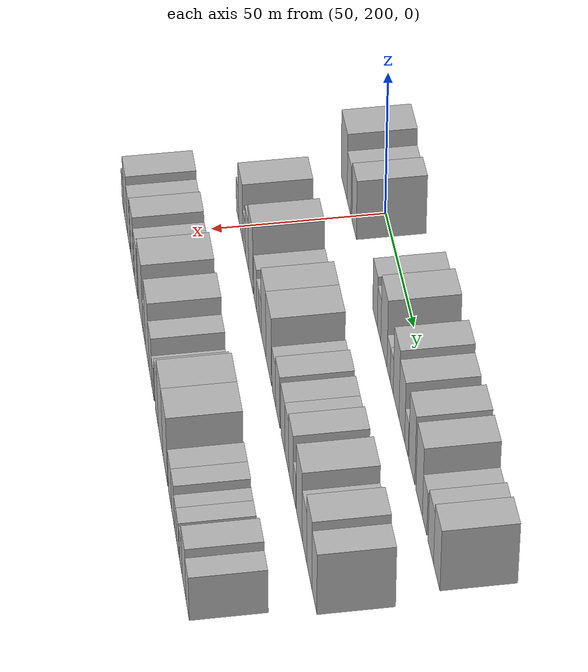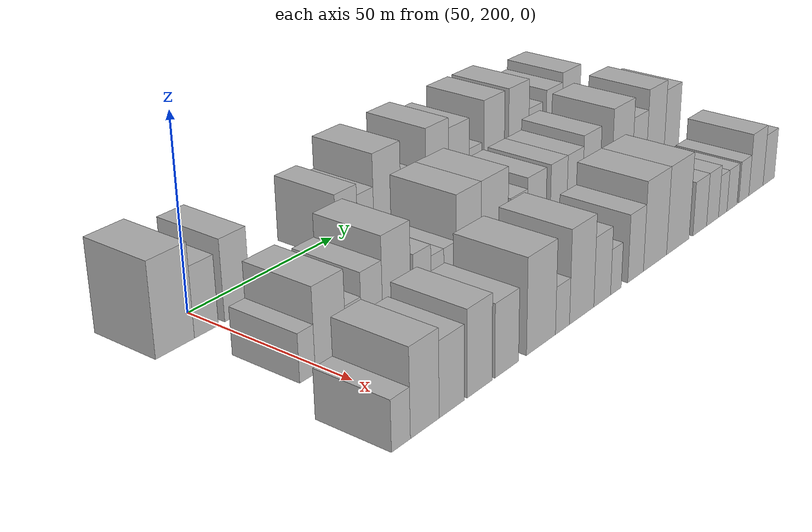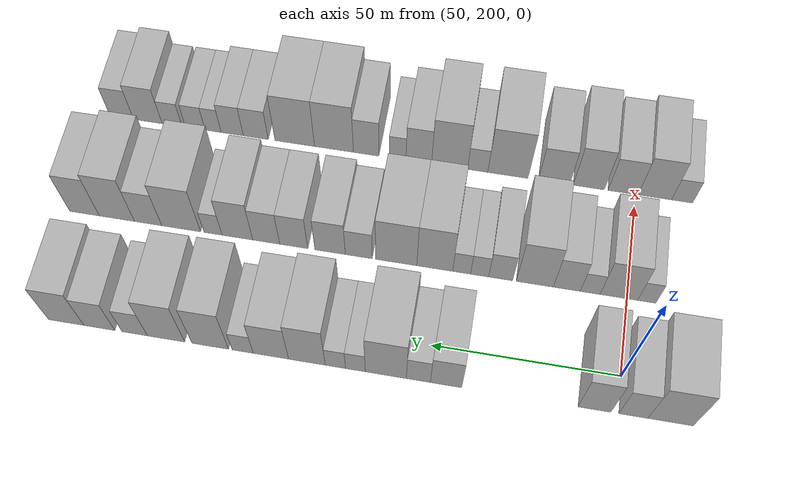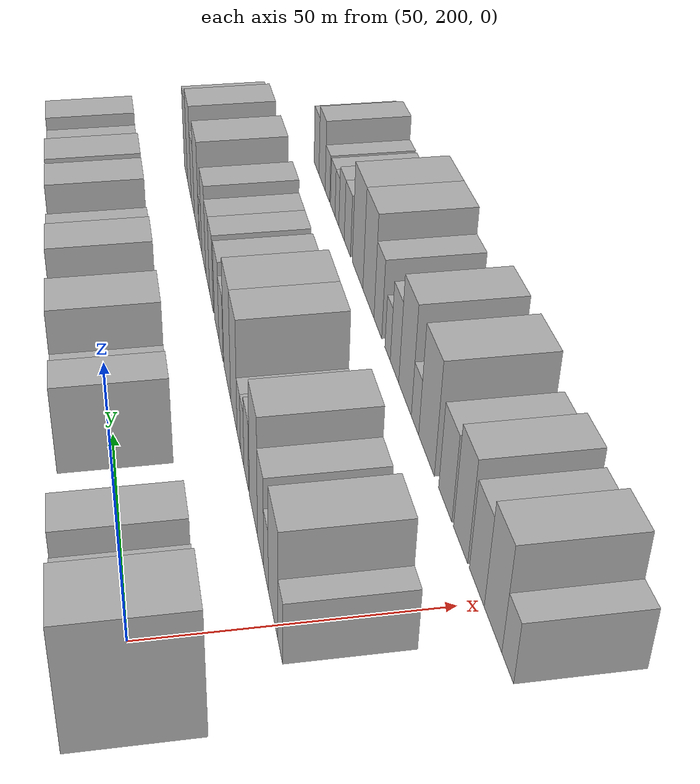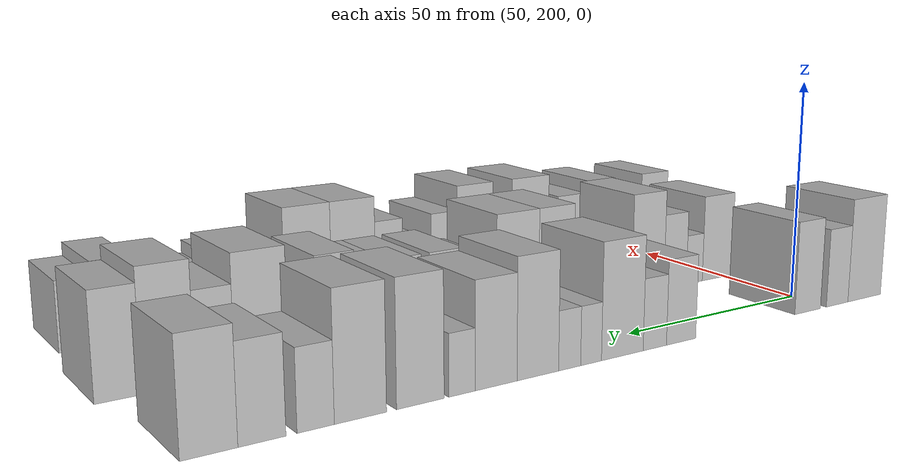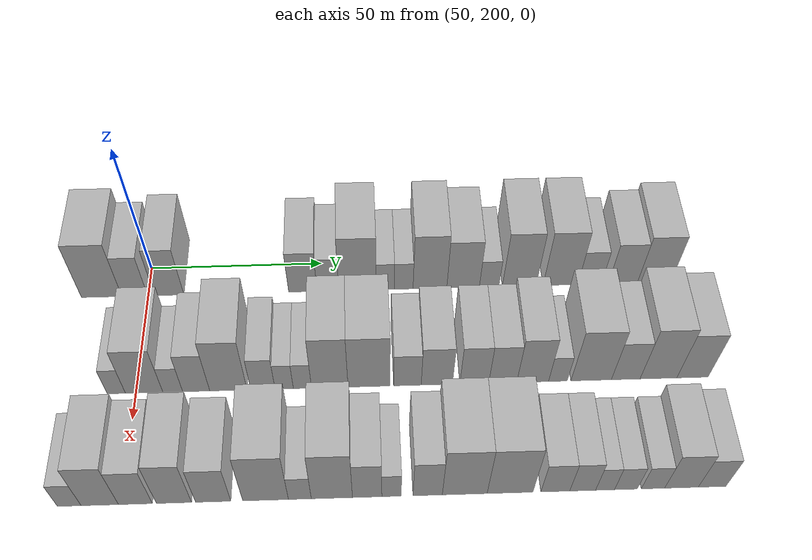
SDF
<sdf version="1.6">
 <world name="default">
  <model name="building_55">
   <static>1</static>
   <pose>50.0000 186.7278 0 0.000000 0.000000 0.000000</pose>
   <link name="link">
    <pose>0 0 12.00 0 0 0</pose>
    <collision name="collision"><geometry><box><size>20.0000 11.5892 24.0000</size></box></geometry></collision>
    <visual name="visual">
     <cast_shadows>0</cast_shadows>
     <geometry><box><size>20.0000 11.5892 24.0000</size></box></geometry>
     <material>
      <script>
       <uri>model://HANNAS_wall/materials/scripts</uri>
       <uri>model://HANNAS_wall/materials/textures</uri>
       <name>vrc/HANNAS_wall</name>
      </script>
     </material>
    </visual>
   </link>
  </model>
  <model name="building_56">
   <static>1</static>
   <pose>50.0000 196.2250 0 0.000000 0.000000 0.000000</pose>
   <link name="link">
    <pose>0 0 9.00 0 0 0</pose>
    <collision name="collision"><geometry><box><size>20.0000 7.4051 18.0000</size></box></geometry></collision>
    <visual name="visual">
     <cast_shadows>0</cast_shadows>
     <geometry><box><size>20.0000 7.4051 18.0000</size></box></geometry>
     <material>
      <script>
       <uri>model://HANNAS_wall/materials/scripts</uri>
       <uri>model://HANNAS_wall/materials/textures</uri>
       <name>vrc/HANNAS_wall</name>
      </script>
     </material>
    </visual>
   </link>
  </model>
  <model name="building_57">
   <static>1</static>
   <pose>50.0000 206.1404 0 0.000000 0.000000 0.000000</pose>
   <link name="link">
    <pose>0 0 10.50 0 0 0</pose>
    <collision name="collision"><geometry><box><size>20.0000 8.4257 21.0000</size></box></geometry></collision>
    <visual name="visual">
     <cast_shadows>0</cast_shadows>
     <geometry><box><size>20.0000 8.4257 21.0000</size></box></geometry>
     <material>
      <script>
       <uri>model://HANNAS_wall/materials/scripts</uri>
       <uri>model://HANNAS_wall/materials/textures</uri>
       <name>vrc/HANNAS_wall</name>
      </script>
     </material>
    </visual>
   </link>
  </model>
  <model name="building_58">
   <static>1</static>
   <pose>50.0000 244.6145 0 0.000000 0.000000 0.000000</pose>
   <link name="link">
    <pose>0 0 9.00 0 0 0</pose>
    <collision name="collision"><geometry><box><size>20.0000 8.1742 18.0000</size></box></geometry></collision>
    <visual name="visual">
     <cast_shadows>0</cast_shadows>
     <geometry><box><size>20.0000 8.1742 18.0000</size></box></geometry>
     <material>
      <script>
       <uri>model://HANNAS_wall/materials/scripts</uri>
       <uri>model://HANNAS_wall/materials/textures</uri>
       <name>vrc/HANNAS_wall</name>
      </script>
     </material>
    </visual>
   </link>
  </model>
  <model name="building_59">
   <static>1</static>
   <pose>50.0000 251.8516 0 0.000000 0.000000 0.000000</pose>
   <link name="link">
    <pose>0 0 7.50 0 0 0</pose>
    <collision name="collision"><geometry><box><size>20.0000 6.3000 15.0000</size></box></geometry></collision>
    <visual name="visual">
     <cast_shadows>0</cast_shadows>
     <geometry><box><size>20.0000 6.3000 15.0000</size></box></geometry>
     <material>
      <script>
       <uri>model://HANNAS_wall/materials/scripts</uri>
       <uri>model://HANNAS_wall/materials/textures</uri>
       <name>vrc/HANNAS_wall</name>
      </script>
     </material>
    </visual>
   </link>
  </model>
  <model name="building_60">
   <static>1</static>
   <pose>50.0000 260.4303 0 0.000000 0.000000 0.000000</pose>
   <link name="link">
    <pose>0 0 12.00 0 0 0</pose>
    <collision name="collision"><geometry><box><size>20.0000 10.8573 24.0000</size></box></geometry></collision>
    <visual name="visual">
     <cast_shadows>0</cast_shadows>
     <geometry><box><size>20.0000 10.8573 24.0000</size></box></geometry>
     <material>
      <script>
       <uri>model://HANNAS_wall/materials/scripts</uri>
       <uri>model://HANNAS_wall/materials/textures</uri>
       <name>vrc/HANNAS_wall</name>
      </script>
     </material>
    </visual>
   </link>
  </model>
  <model name="building_61">
   <static>1</static>
   <pose>50.0000 268.4709 0 0.000000 0.000000 0.000000</pose>
   <link name="link">
    <pose>0 0 6.00 0 0 0</pose>
    <collision name="collision"><geometry><box><size>20.0000 5.2240 12.0000</size></box></geometry></collision>
    <visual name="visual">
     <cast_shadows>0</cast_shadows>
     <geometry><box><size>20.0000 5.2240 12.0000</size></box></geometry>
     <material>
      <script>
       <uri>model://HANNAS_wall/materials/scripts</uri>
       <uri>model://HANNAS_wall/materials/textures</uri>
       <name>vrc/HANNAS_wall</name>
      </script>
     </material>
    </visual>
   </link>
  </model>
  <model name="building_62">
   <static>1</static>
   <pose>50.0000 273.7795 0 0.000000 0.000000 0.000000</pose>
   <link name="link">
    <pose>0 0 6.00 0 0 0</pose>
    <collision name="collision"><geometry><box><size>20.0000 5.3933 12.0000</size></box></geometry></collision>
    <visual name="visual">
     <cast_shadows>0</cast_shadows>
     <geometry><box><size>20.0000 5.3933 12.0000</size></box></geometry>
     <material>
      <script>
       <uri>model://HANNAS_wall/materials/scripts</uri>
       <uri>model://HANNAS_wall/materials/textures</uri>
       <name>vrc/HANNAS_wall</name>
      </script>
     </material>
    </visual>
   </link>
  </model>
  <model name="building_63">
   <static>1</static>
   <pose>50.0000 281.3746 0 0.000000 0.000000 0.000000</pose>
   <link name="link">
    <pose>0 0 12.00 0 0 0</pose>
    <collision name="collision"><geometry><box><size>20.0000 9.7968 24.0000</size></box></geometry></collision>
    <visual name="visual">
     <cast_shadows>0</cast_shadows>
     <geometry><box><size>20.0000 9.7968 24.0000</size></box></geometry>
     <material>
      <script>
       <uri>model://HANNAS_wall/materials/scripts</uri>
       <uri>model://HANNAS_wall/materials/textures</uri>
       <name>vrc/HANNAS_wall</name>
      </script>
     </material>
    </visual>
   </link>
  </model>
  <model name="building_64">
   <static>1</static>
   <pose>50.0000 291.0005 0 0.000000 0.000000 0.000000</pose>
   <link name="link">
    <pose>0 0 10.50 0 0 0</pose>
    <collision name="collision"><geometry><box><size>20.0000 9.4550 21.0000</size></box></geometry></collision>
    <visual name="visual">
     <cast_shadows>0</cast_shadows>
     <geometry><box><size>20.0000 9.4550 21.0000</size></box></geometry>
     <material>
      <script>
       <uri>model://HANNAS_wall/materials/scripts</uri>
       <uri>model://HANNAS_wall/materials/textures</uri>
       <name>vrc/HANNAS_wall</name>
      </script>
     </material>
    </visual>
   </link>
  </model>
  <model name="building_65">
   <static>1</static>
   <pose>50.0000 298.5631 0 0.000000 0.000000 0.000000</pose>
   <link name="link">
    <pose>0 0 6.00 0 0 0</pose>
    <collision name="collision"><geometry><box><size>20.0000 5.6702 12.0000</size></box></geometry></collision>
    <visual name="visual">
     <cast_shadows>0</cast_shadows>
     <geometry><box><size>20.0000 5.6702 12.0000</size></box></geometry>
     <material>
      <script>
       <uri>model://HANNAS_wall/materials/scripts</uri>
       <uri>model://HANNAS_wall/materials/textures</uri>
       <name>vrc/HANNAS_wall</name>
      </script>
     </material>
    </visual>
   </link>
  </model>
  <model name="building_66">
   <static>1</static>
   <pose>50.0000 307.3275 0 0.000000 0.000000 0.000000</pose>
   <link name="link">
    <pose>0 0 12.00 0 0 0</pose>
    <collision name="collision"><geometry><box><size>20.0000 9.8586 24.0000</size></box></geometry></collision>
    <visual name="visual">
     <cast_shadows>0</cast_shadows>
     <geometry><box><size>20.0000 9.8586 24.0000</size></box></geometry>
     <material>
      <script>
       <uri>model://HANNAS_wall/materials/scripts</uri>
       <uri>model://HANNAS_wall/materials/textures</uri>
       <name>vrc/HANNAS_wall</name>
      </script>
     </material>
    </visual>
   </link>
  </model>
  <model name="building_67">
   <static>1</static>
   <pose>50.0000 319.3282 0 0.000000 0.000000 0.000000</pose>
   <link name="link">
    <pose>0 0 12.00 0 0 0</pose>
    <collision name="collision"><geometry><box><size>20.0000 10.1428 24.0000</size></box></geometry></collision>
    <visual name="visual">
     <cast_shadows>0</cast_shadows>
     <geometry><box><size>20.0000 10.1428 24.0000</size></box></geometry>
     <material>
      <script>
       <uri>model://HANNAS_wall/materials/scripts</uri>
       <uri>model://HANNAS_wall/materials/textures</uri>
       <name>vrc/HANNAS_wall</name>
      </script>
     </material>
    </visual>
   </link>
  </model>
  <model name="building_68">
   <static>1</static>
   <pose>50.0000 327.8639 0 0.000000 0.000000 0.000000</pose>
   <link name="link">
    <pose>0 0 7.50 0 0 0</pose>
    <collision name="collision"><geometry><box><size>20.0000 6.9286 15.0000</size></box></geometry></collision>
    <visual name="visual">
     <cast_shadows>0</cast_shadows>
     <geometry><box><size>20.0000 6.9286 15.0000</size></box></geometry>
     <material>
      <script>
       <uri>model://HANNAS_wall/materials/scripts</uri>
       <uri>model://HANNAS_wall/materials/textures</uri>
       <name>vrc/HANNAS_wall</name>
      </script>
     </material>
    </visual>
   </link>
  </model>
  <model name="building_69">
   <static>1</static>
   <pose>50.0000 337.5561 0 0.000000 0.000000 0.000000</pose>
   <link name="link">
    <pose>0 0 9.00 0 0 0</pose>
    <collision name="collision"><geometry><box><size>20.0000 8.4558 18.0000</size></box></geometry></collision>
    <visual name="visual">
     <cast_shadows>0</cast_shadows>
     <geometry><box><size>20.0000 8.4558 18.0000</size></box></geometry>
     <material>
      <script>
       <uri>model://HANNAS_wall/materials/scripts</uri>
       <uri>model://HANNAS_wall/materials/textures</uri>
       <name>vrc/HANNAS_wall</name>
      </script>
     </material>
    </visual>
   </link>
  </model>
  <model name="building_70">
   <static>1</static>
   <pose>50.0000 346.6746 0 0.000000 0.000000 0.000000</pose>
   <link name="link">
    <pose>0 0 10.50 0 0 0</pose>
    <collision name="collision"><geometry><box><size>20.0000 9.7811 21.0000</size></box></geometry></collision>
    <visual name="visual">
     <cast_shadows>0</cast_shadows>
     <geometry><box><size>20.0000 9.7811 21.0000</size></box></geometry>
     <material>
      <script>
       <uri>model://HANNAS_wall/materials/scripts</uri>
       <uri>model://HANNAS_wall/materials/textures</uri>
       <name>vrc/HANNAS_wall</name>
      </script>
     </material>
    </visual>
   </link>
  </model>
  <model name="building_128">
   <static>1</static>
   <pose>82.0000 194.8091 0 0.000000 0.000000 0.000000</pose>
   <link name="link">
    <pose>0 0 6.00 0 0 0</pose>
    <collision name="collision"><geometry><box><size>20.0000 4.9152 12.0000</size></box></geometry></collision>
    <visual name="visual">
     <cast_shadows>0</cast_shadows>
     <geometry><box><size>20.0000 4.9152 12.0000</size></box></geometry>
     <material>
      <script>
       <uri>model://HANNAS_wall/materials/scripts</uri>
       <uri>model://HANNAS_wall/materials/textures</uri>
       <name>vrc/HANNAS_wall</name>
      </script>
     </material>
    </visual>
   </link>
  </model>
  <model name="building_129">
   <static>1</static>
   <pose>82.0000 202.3026 0 0.000000 0.000000 0.000000</pose>
   <link name="link">
    <pose>0 0 10.50 0 0 0</pose>
    <collision name="collision"><geometry><box><size>20.0000 10.0717 21.0000</size></box></geometry></collision>
    <visual name="visual">
     <cast_shadows>0</cast_shadows>
     <geometry><box><size>20.0000 10.0717 21.0000</size></box></geometry>
     <material>
      <script>
       <uri>model://HANNAS_wall/materials/scripts</uri>
       <uri>model://HANNAS_wall/materials/textures</uri>
       <name>vrc/HANNAS_wall</name>
      </script>
     </material>
    </visual>
   </link>
  </model>
  <model name="building_130">
   <static>1</static>
   <pose>82.0000 210.0031 0 0.000000 0.000000 0.000000</pose>
   <link name="link">
    <pose>0 0 6.00 0 0 0</pose>
    <collision name="collision"><geometry><box><size>20.0000 5.3293 12.0000</size></box></geometry></collision>
    <visual name="visual">
     <cast_shadows>0</cast_shadows>
     <geometry><box><size>20.0000 5.3293 12.0000</size></box></geometry>
     <material>
      <script>
       <uri>model://HANNAS_wall/materials/scripts</uri>
       <uri>model://HANNAS_wall/materials/textures</uri>
       <name>vrc/HANNAS_wall</name>
      </script>
     </material>
    </visual>
   </link>
  </model>
  <model name="building_131">
   <static>1</static>
   <pose>82.0000 216.3197 0 0.000000 0.000000 0.000000</pose>
   <link name="link">
    <pose>0 0 9.00 0 0 0</pose>
    <collision name="collision"><geometry><box><size>20.0000 7.3040 18.0000</size></box></geometry></collision>
    <visual name="visual">
     <cast_shadows>0</cast_shadows>
     <geometry><box><size>20.0000 7.3040 18.0000</size></box></geometry>
     <material>
      <script>
       <uri>model://HANNAS_wall/materials/scripts</uri>
       <uri>model://HANNAS_wall/materials/textures</uri>
       <name>vrc/HANNAS_wall</name>
      </script>
     </material>
    </visual>
   </link>
  </model>
  <model name="building_132">
   <static>1</static>
   <pose>82.0000 225.0099 0 0.000000 0.000000 0.000000</pose>
   <link name="link">
    <pose>0 0 12.00 0 0 0</pose>
    <collision name="collision"><geometry><box><size>20.0000 10.0763 24.0000</size></box></geometry></collision>
    <visual name="visual">
     <cast_shadows>0</cast_shadows>
     <geometry><box><size>20.0000 10.0763 24.0000</size></box></geometry>
     <material>
      <script>
       <uri>model://HANNAS_wall/materials/scripts</uri>
       <uri>model://HANNAS_wall/materials/textures</uri>
       <name>vrc/HANNAS_wall</name>
      </script>
     </material>
    </visual>
   </link>
  </model>
  <model name="building_133">
   <static>1</static>
   <pose>82.0000 234.3269 0 0.000000 0.000000 0.000000</pose>
   <link name="link">
    <pose>0 0 7.50 0 0 0</pose>
    <collision name="collision"><geometry><box><size>20.0000 6.5578 15.0000</size></box></geometry></collision>
    <visual name="visual">
     <cast_shadows>0</cast_shadows>
     <geometry><box><size>20.0000 6.5578 15.0000</size></box></geometry>
     <material>
      <script>
       <uri>model://HANNAS_wall/materials/scripts</uri>
       <uri>model://HANNAS_wall/materials/textures</uri>
       <name>vrc/HANNAS_wall</name>
      </script>
     </material>
    </visual>
   </link>
  </model>
  <model name="building_134">
   <static>1</static>
   <pose>82.0000 240.0708 0 0.000000 0.000000 0.000000</pose>
   <link name="link">
    <pose>0 0 6.00 0 0 0</pose>
    <collision name="collision"><geometry><box><size>20.0000 4.9299 12.0000</size></box></geometry></collision>
    <visual name="visual">
     <cast_shadows>0</cast_shadows>
     <geometry><box><size>20.0000 4.9299 12.0000</size></box></geometry>
     <material>
      <script>
       <uri>model://HANNAS_wall/materials/scripts</uri>
       <uri>model://HANNAS_wall/materials/textures</uri>
       <name>vrc/HANNAS_wall</name>
      </script>
     </material>
    </visual>
   </link>
  </model>
  <model name="building_135">
   <static>1</static>
   <pose>82.0000 244.9905 0 0.000000 0.000000 0.000000</pose>
   <link name="link">
    <pose>0 0 6.00 0 0 0</pose>
    <collision name="collision"><geometry><box><size>20.0000 4.9096 12.0000</size></box></geometry></collision>
    <visual name="visual">
     <cast_shadows>0</cast_shadows>
     <geometry><box><size>20.0000 4.9096 12.0000</size></box></geometry>
     <material>
      <script>
       <uri>model://HANNAS_wall/materials/scripts</uri>
       <uri>model://HANNAS_wall/materials/textures</uri>
       <name>vrc/HANNAS_wall</name>
      </script>
     </material>
    </visual>
   </link>
  </model>
  <model name="building_136">
   <static>1</static>
   <pose>82.0000 252.3844 0 0.000000 0.000000 0.000000</pose>
   <link name="link">
    <pose>0 0 12.00 0 0 0</pose>
    <collision name="collision"><geometry><box><size>20.0000 9.8783 24.0000</size></box></geometry></collision>
    <visual name="visual">
     <cast_shadows>0</cast_shadows>
     <geometry><box><size>20.0000 9.8783 24.0000</size></box></geometry>
     <material>
      <script>
       <uri>model://HANNAS_wall/materials/scripts</uri>
       <uri>model://HANNAS_wall/materials/textures</uri>
       <name>vrc/HANNAS_wall</name>
      </script>
     </material>
    </visual>
   </link>
  </model>
  <model name="building_137">
   <static>1</static>
   <pose>82.0000 263.0053 0 0.000000 0.000000 0.000000</pose>
   <link name="link">
    <pose>0 0 12.00 0 0 0</pose>
    <collision name="collision"><geometry><box><size>20.0000 11.3634 24.0000</size></box></geometry></collision>
    <visual name="visual">
     <cast_shadows>0</cast_shadows>
     <geometry><box><size>20.0000 11.3634 24.0000</size></box></geometry>
     <material>
      <script>
       <uri>model://HANNAS_wall/materials/scripts</uri>
       <uri>model://HANNAS_wall/materials/textures</uri>
       <name>vrc/HANNAS_wall</name>
      </script>
     </material>
    </visual>
   </link>
  </model>
  <model name="building_138">
   <static>1</static>
   <pose>82.0000 273.4248 0 0.000000 0.000000 0.000000</pose>
   <link name="link">
    <pose>0 0 7.50 0 0 0</pose>
    <collision name="collision"><geometry><box><size>20.0000 7.4757 15.0000</size></box></geometry></collision>
    <visual name="visual">
     <cast_shadows>0</cast_shadows>
     <geometry><box><size>20.0000 7.4757 15.0000</size></box></geometry>
     <material>
      <script>
       <uri>model://HANNAS_wall/materials/scripts</uri>
       <uri>model://HANNAS_wall/materials/textures</uri>
       <name>vrc/HANNAS_wall</name>
      </script>
     </material>
    </visual>
   </link>
  </model>
  <model name="building_139">
   <static>1</static>
   <pose>82.0000 281.4074 0 0.000000 0.000000 0.000000</pose>
   <link name="link">
    <pose>0 0 9.00 0 0 0</pose>
    <collision name="collision"><geometry><box><size>20.0000 8.4895 18.0000</size></box></geometry></collision>
    <visual name="visual">
     <cast_shadows>0</cast_shadows>
     <geometry><box><size>20.0000 8.4895 18.0000</size></box></geometry>
     <material>
      <script>
       <uri>model://HANNAS_wall/materials/scripts</uri>
       <uri>model://HANNAS_wall/materials/textures</uri>
       <name>vrc/HANNAS_wall</name>
      </script>
     </material>
    </visual>
   </link>
  </model>
  <model name="building_140">
   <static>1</static>
   <pose>82.0000 291.5903 0 0.000000 0.000000 0.000000</pose>
   <link name="link">
    <pose>0 0 9.00 0 0 0</pose>
    <collision name="collision"><geometry><box><size>20.0000 7.8763 18.0000</size></box></geometry></collision>
    <visual name="visual">
     <cast_shadows>0</cast_shadows>
     <geometry><box><size>20.0000 7.8763 18.0000</size></box></geometry>
     <material>
      <script>
       <uri>model://HANNAS_wall/materials/scripts</uri>
       <uri>model://HANNAS_wall/materials/textures</uri>
       <name>vrc/HANNAS_wall</name>
      </script>
     </material>
    </visual>
   </link>
  </model>
  <model name="building_141">
   <static>1</static>
   <pose>82.0000 299.3403 0 0.000000 0.000000 0.000000</pose>
   <link name="link">
    <pose>0 0 9.00 0 0 0</pose>
    <collision name="collision"><geometry><box><size>20.0000 7.6237 18.0000</size></box></geometry></collision>
    <visual name="visual">
     <cast_shadows>0</cast_shadows>
     <geometry><box><size>20.0000 7.6237 18.0000</size></box></geometry>
     <material>
      <script>
       <uri>model://HANNAS_wall/materials/scripts</uri>
       <uri>model://HANNAS_wall/materials/textures</uri>
       <name>vrc/HANNAS_wall</name>
      </script>
     </material>
    </visual>
   </link>
  </model>
  <model name="building_142">
   <static>1</static>
   <pose>82.0000 307.4970 0 0.000000 0.000000 0.000000</pose>
   <link name="link">
    <pose>0 0 10.50 0 0 0</pose>
    <collision name="collision"><geometry><box><size>20.0000 8.6898 21.0000</size></box></geometry></collision>
    <visual name="visual">
     <cast_shadows>0</cast_shadows>
     <geometry><box><size>20.0000 8.6898 21.0000</size></box></geometry>
     <material>
      <script>
       <uri>model://HANNAS_wall/materials/scripts</uri>
       <uri>model://HANNAS_wall/materials/textures</uri>
       <name>vrc/HANNAS_wall</name>
      </script>
     </material>
    </visual>
   </link>
  </model>
  <model name="building_143">
   <static>1</static>
   <pose>82.0000 314.3983 0 0.000000 0.000000 0.000000</pose>
   <link name="link">
    <pose>0 0 6.00 0 0 0</pose>
    <collision name="collision"><geometry><box><size>20.0000 5.1127 12.0000</size></box></geometry></collision>
    <visual name="visual">
     <cast_shadows>0</cast_shadows>
     <geometry><box><size>20.0000 5.1127 12.0000</size></box></geometry>
     <material>
      <script>
       <uri>model://HANNAS_wall/materials/scripts</uri>
       <uri>model://HANNAS_wall/materials/textures</uri>
       <name>vrc/HANNAS_wall</name>
      </script>
     </material>
    </visual>
   </link>
  </model>
  <model name="building_144">
   <static>1</static>
   <pose>82.0000 323.4834 0 0.000000 0.000000 0.000000</pose>
   <link name="link">
    <pose>0 0 12.00 0 0 0</pose>
    <collision name="collision"><geometry><box><size>20.0000 11.0576 24.0000</size></box></geometry></collision>
    <visual name="visual">
     <cast_shadows>0</cast_shadows>
     <geometry><box><size>20.0000 11.0576 24.0000</size></box></geometry>
     <material>
      <script>
       <uri>model://HANNAS_wall/materials/scripts</uri>
       <uri>model://HANNAS_wall/materials/textures</uri>
       <name>vrc/HANNAS_wall</name>
      </script>
     </material>
    </visual>
   </link>
  </model>
  <model name="building_145">
   <static>1</static>
   <pose>82.0000 332.9389 0 0.000000 0.000000 0.000000</pose>
   <link name="link">
    <pose>0 0 9.00 0 0 0</pose>
    <collision name="collision"><geometry><box><size>20.0000 7.8533 18.0000</size></box></geometry></collision>
    <visual name="visual">
     <cast_shadows>0</cast_shadows>
     <geometry><box><size>20.0000 7.8533 18.0000</size></box></geometry>
     <material>
      <script>
       <uri>model://HANNAS_wall/materials/scripts</uri>
       <uri>model://HANNAS_wall/materials/textures</uri>
       <name>vrc/HANNAS_wall</name>
      </script>
     </material>
    </visual>
   </link>
  </model>
  <model name="building_146">
   <static>1</static>
   <pose>82.0000 341.9165 0 0.000000 0.000000 0.000000</pose>
   <link name="link">
    <pose>0 0 12.00 0 0 0</pose>
    <collision name="collision"><geometry><box><size>20.0000 10.1018 24.0000</size></box></geometry></collision>
    <visual name="visual">
     <cast_shadows>0</cast_shadows>
     <geometry><box><size>20.0000 10.1018 24.0000</size></box></geometry>
     <material>
      <script>
       <uri>model://HANNAS_wall/materials/scripts</uri>
       <uri>model://HANNAS_wall/materials/textures</uri>
       <name>vrc/HANNAS_wall</name>
      </script>
     </material>
    </visual>
   </link>
  </model>
  <model name="building_147">
   <static>1</static>
   <pose>82.0000 351.2556 0 0.000000 0.000000 0.000000</pose>
   <link name="link">
    <pose>0 0 10.50 0 0 0</pose>
    <collision name="collision"><geometry><box><size>20.0000 8.5765 21.0000</size></box></geometry></collision>
    <visual name="visual">
     <cast_shadows>0</cast_shadows>
     <geometry><box><size>20.0000 8.5765 21.0000</size></box></geometry>
     <material>
      <script>
       <uri>model://HANNAS_wall/materials/scripts</uri>
       <uri>model://HANNAS_wall/materials/textures</uri>
       <name>vrc/HANNAS_wall</name>
      </script>
     </material>
    </visual>
   </link>
  </model>
  <model name="building_207">
   <static>1</static>
   <pose>114.0000 186.9176 0 0.000000 0.000000 0.000000</pose>
   <link name="link">
    <pose>0 0 6.00 0 0 0</pose>
    <collision name="collision"><geometry><box><size>20.0000 5.9171 12.0000</size></box></geometry></collision>
    <visual name="visual">
     <cast_shadows>0</cast_shadows>
     <geometry><box><size>20.0000 5.9171 12.0000</size></box></geometry>
     <material>
      <script>
       <uri>model://HANNAS_wall/materials/scripts</uri>
       <uri>model://HANNAS_wall/materials/textures</uri>
       <name>vrc/HANNAS_wall</name>
      </script>
     </material>
    </visual>
   </link>
  </model>
  <model name="building_208">
   <static>1</static>
   <pose>114.0000 194.5596 0 0.000000 0.000000 0.000000</pose>
   <link name="link">
    <pose>0 0 10.50 0 0 0</pose>
    <collision name="collision"><geometry><box><size>20.0000 9.3671 21.0000</size></box></geometry></collision>
    <visual name="visual">
     <cast_shadows>0</cast_shadows>
     <geometry><box><size>20.0000 9.3671 21.0000</size></box></geometry>
     <material>
      <script>
       <uri>model://HANNAS_wall/materials/scripts</uri>
       <uri>model://HANNAS_wall/materials/textures</uri>
       <name>vrc/HANNAS_wall</name>
      </script>
     </material>
    </visual>
   </link>
  </model>
  <model name="building_209">
   <static>1</static>
   <pose>114.0000 203.4908 0 0.000000 0.000000 0.000000</pose>
   <link name="link">
    <pose>0 0 9.00 0 0 0</pose>
    <collision name="collision"><geometry><box><size>20.0000 8.4952 18.0000</size></box></geometry></collision>
    <visual name="visual">
     <cast_shadows>0</cast_shadows>
     <geometry><box><size>20.0000 8.4952 18.0000</size></box></geometry>
     <material>
      <script>
       <uri>model://HANNAS_wall/materials/scripts</uri>
       <uri>model://HANNAS_wall/materials/textures</uri>
       <name>vrc/HANNAS_wall</name>
      </script>
     </material>
    </visual>
   </link>
  </model>
  <model name="building_210">
   <static>1</static>
   <pose>114.0000 213.1574 0 0.000000 0.000000 0.000000</pose>
   <link name="link">
    <pose>0 0 10.50 0 0 0</pose>
    <collision name="collision"><geometry><box><size>20.0000 8.8382 21.0000</size></box></geometry></collision>
    <visual name="visual">
     <cast_shadows>0</cast_shadows>
     <geometry><box><size>20.0000 8.8382 21.0000</size></box></geometry>
     <material>
      <script>
       <uri>model://HANNAS_wall/materials/scripts</uri>
       <uri>model://HANNAS_wall/materials/textures</uri>
       <name>vrc/HANNAS_wall</name>
      </script>
     </material>
    </visual>
   </link>
  </model>
  <model name="building_211">
   <static>1</static>
   <pose>114.0000 223.0114 0 0.000000 0.000000 0.000000</pose>
   <link name="link">
    <pose>0 0 9.00 0 0 0</pose>
    <collision name="collision"><geometry><box><size>20.0000 8.8697 18.0000</size></box></geometry></collision>
    <visual name="visual">
     <cast_shadows>0</cast_shadows>
     <geometry><box><size>20.0000 8.8697 18.0000</size></box></geometry>
     <material>
      <script>
       <uri>model://HANNAS_wall/materials/scripts</uri>
       <uri>model://HANNAS_wall/materials/textures</uri>
       <name>vrc/HANNAS_wall</name>
      </script>
     </material>
    </visual>
   </link>
  </model>
  <model name="building_212">
   <static>1</static>
   <pose>114.0000 236.1957 0 0.000000 0.000000 0.000000</pose>
   <link name="link">
    <pose>0 0 12.00 0 0 0</pose>
    <collision name="collision"><geometry><box><size>20.0000 11.4988 24.0000</size></box></geometry></collision>
    <visual name="visual">
     <cast_shadows>0</cast_shadows>
     <geometry><box><size>20.0000 11.4988 24.0000</size></box></geometry>
     <material>
      <script>
       <uri>model://HANNAS_wall/materials/scripts</uri>
       <uri>model://HANNAS_wall/materials/textures</uri>
       <name>vrc/HANNAS_wall</name>
      </script>
     </material>
    </visual>
   </link>
  </model>
  <model name="building_213">
   <static>1</static>
   <pose>114.0000 244.8293 0 0.000000 0.000000 0.000000</pose>
   <link name="link">
    <pose>0 0 6.00 0 0 0</pose>
    <collision name="collision"><geometry><box><size>20.0000 5.7683 12.0000</size></box></geometry></collision>
    <visual name="visual">
     <cast_shadows>0</cast_shadows>
     <geometry><box><size>20.0000 5.7683 12.0000</size></box></geometry>
     <material>
      <script>
       <uri>model://HANNAS_wall/materials/scripts</uri>
       <uri>model://HANNAS_wall/materials/textures</uri>
       <name>vrc/HANNAS_wall</name>
      </script>
     </material>
    </visual>
   </link>
  </model>
  <model name="building_214">
   <static>1</static>
   <pose>114.0000 252.9064 0 0.000000 0.000000 0.000000</pose>
   <link name="link">
    <pose>0 0 12.00 0 0 0</pose>
    <collision name="collision"><geometry><box><size>20.0000 10.3859 24.0000</size></box></geometry></collision>
    <visual name="visual">
     <cast_shadows>0</cast_shadows>
     <geometry><box><size>20.0000 10.3859 24.0000</size></box></geometry>
     <material>
      <script>
       <uri>model://HANNAS_wall/materials/scripts</uri>
       <uri>model://HANNAS_wall/materials/textures</uri>
       <name>vrc/HANNAS_wall</name>
      </script>
     </material>
    </visual>
   </link>
  </model>
  <model name="building_215">
   <static>1</static>
   <pose>114.0000 261.8060 0 0.000000 0.000000 0.000000</pose>
   <link name="link">
    <pose>0 0 9.00 0 0 0</pose>
    <collision name="collision"><geometry><box><size>20.0000 7.4134 18.0000</size></box></geometry></collision>
    <visual name="visual">
     <cast_shadows>0</cast_shadows>
     <geometry><box><size>20.0000 7.4134 18.0000</size></box></geometry>
     <material>
      <script>
       <uri>model://HANNAS_wall/materials/scripts</uri>
       <uri>model://HANNAS_wall/materials/textures</uri>
       <name>vrc/HANNAS_wall</name>
      </script>
     </material>
    </visual>
   </link>
  </model>
  <model name="building_216">
   <static>1</static>
   <pose>114.0000 267.9541 0 0.000000 0.000000 0.000000</pose>
   <link name="link">
    <pose>0 0 6.00 0 0 0</pose>
    <collision name="collision"><geometry><box><size>20.0000 4.8828 12.0000</size></box></geometry></collision>
    <visual name="visual">
     <cast_shadows>0</cast_shadows>
     <geometry><box><size>20.0000 4.8828 12.0000</size></box></geometry>
     <material>
      <script>
       <uri>model://HANNAS_wall/materials/scripts</uri>
       <uri>model://HANNAS_wall/materials/textures</uri>
       <name>vrc/HANNAS_wall</name>
      </script>
     </material>
    </visual>
   </link>
  </model>
  <model name="building_217">
   <static>1</static>
   <pose>114.0000 277.1069 0 0.000000 0.000000 0.000000</pose>
   <link name="link">
    <pose>0 0 9.00 0 0 0</pose>
    <collision name="collision"><geometry><box><size>20.0000 7.4227 18.0000</size></box></geometry></collision>
    <visual name="visual">
     <cast_shadows>0</cast_shadows>
     <geometry><box><size>20.0000 7.4227 18.0000</size></box></geometry>
     <material>
      <script>
       <uri>model://HANNAS_wall/materials/scripts</uri>
       <uri>model://HANNAS_wall/materials/textures</uri>
       <name>vrc/HANNAS_wall</name>
      </script>
     </material>
    </visual>
   </link>
  </model>
  <model name="building_218">
   <static>1</static>
   <pose>114.0000 286.5117 0 0.000000 0.000000 0.000000</pose>
   <link name="link">
    <pose>0 0 12.00 0 0 0</pose>
    <collision name="collision"><geometry><box><size>20.0000 11.3869 24.0000</size></box></geometry></collision>
    <visual name="visual">
     <cast_shadows>0</cast_shadows>
     <geometry><box><size>20.0000 11.3869 24.0000</size></box></geometry>
     <material>
      <script>
       <uri>model://HANNAS_wall/materials/scripts</uri>
       <uri>model://HANNAS_wall/materials/textures</uri>
       <name>vrc/HANNAS_wall</name>
      </script>
     </material>
    </visual>
   </link>
  </model>
  <model name="building_219">
   <static>1</static>
   <pose>114.0000 298.0241 0 0.000000 0.000000 0.000000</pose>
   <link name="link">
    <pose>0 0 12.00 0 0 0</pose>
    <collision name="collision"><geometry><box><size>20.0000 11.6379 24.0000</size></box></geometry></collision>
    <visual name="visual">
     <cast_shadows>0</cast_shadows>
     <geometry><box><size>20.0000 11.6379 24.0000</size></box></geometry>
     <material>
      <script>
       <uri>model://HANNAS_wall/materials/scripts</uri>
       <uri>model://HANNAS_wall/materials/textures</uri>
       <name>vrc/HANNAS_wall</name>
      </script>
     </material>
    </visual>
   </link>
  </model>
  <model name="building_220">
   <static>1</static>
   <pose>114.0000 309.5306 0 0.000000 0.000000 0.000000</pose>
   <link name="link">
    <pose>0 0 7.50 0 0 0</pose>
    <collision name="collision"><geometry><box><size>20.0000 7.3751 15.0000</size></box></geometry></collision>
    <visual name="visual">
     <cast_shadows>0</cast_shadows>
     <geometry><box><size>20.0000 7.3751 15.0000</size></box></geometry>
     <material>
      <script>
       <uri>model://HANNAS_wall/materials/scripts</uri>
       <uri>model://HANNAS_wall/materials/textures</uri>
       <name>vrc/HANNAS_wall</name>
      </script>
     </material>
    </visual>
   </link>
  </model>
  <model name="building_221">
   <static>1</static>
   <pose>114.0000 316.5101 0 0.000000 0.000000 0.000000</pose>
   <link name="link">
    <pose>0 0 7.50 0 0 0</pose>
    <collision name="collision"><geometry><box><size>20.0000 6.5838 15.0000</size></box></geometry></collision>
    <visual name="visual">
     <cast_shadows>0</cast_shadows>
     <geometry><box><size>20.0000 6.5838 15.0000</size></box></geometry>
     <material>
      <script>
       <uri>model://HANNAS_wall/materials/scripts</uri>
       <uri>model://HANNAS_wall/materials/textures</uri>
       <name>vrc/HANNAS_wall</name>
      </script>
     </material>
    </visual>
   </link>
  </model>
  <model name="building_222">
   <static>1</static>
   <pose>114.0000 322.2060 0 0.000000 0.000000 0.000000</pose>
   <link name="link">
    <pose>0 0 6.00 0 0 0</pose>
    <collision name="collision"><geometry><box><size>20.0000 4.8079 12.0000</size></box></geometry></collision>
    <visual name="visual">
     <cast_shadows>0</cast_shadows>
     <geometry><box><size>20.0000 4.8079 12.0000</size></box></geometry>
     <material>
      <script>
       <uri>model://HANNAS_wall/materials/scripts</uri>
       <uri>model://HANNAS_wall/materials/textures</uri>
       <name>vrc/HANNAS_wall</name>
      </script>
     </material>
    </visual>
   </link>
  </model>
  <model name="building_223">
   <static>1</static>
   <pose>114.0000 327.5340 0 0.000000 0.000000 0.000000</pose>
   <link name="link">
    <pose>0 0 6.00 0 0 0</pose>
    <collision name="collision"><geometry><box><size>20.0000 5.8482 12.0000</size></box></geometry></collision>
    <visual name="visual">
     <cast_shadows>0</cast_shadows>
     <geometry><box><size>20.0000 5.8482 12.0000</size></box></geometry>
     <material>
      <script>
       <uri>model://HANNAS_wall/materials/scripts</uri>
       <uri>model://HANNAS_wall/materials/textures</uri>
       <name>vrc/HANNAS_wall</name>
      </script>
     </material>
    </visual>
   </link>
  </model>
  <model name="building_224">
   <static>1</static>
   <pose>114.0000 334.4441 0 0.000000 0.000000 0.000000</pose>
   <link name="link">
    <pose>0 0 6.00 0 0 0</pose>
    <collision name="collision"><geometry><box><size>20.0000 5.9719 12.0000</size></box></geometry></collision>
    <visual name="visual">
     <cast_shadows>0</cast_shadows>
     <geometry><box><size>20.0000 5.9719 12.0000</size></box></geometry>
     <material>
      <script>
       <uri>model://HANNAS_wall/materials/scripts</uri>
       <uri>model://HANNAS_wall/materials/textures</uri>
       <name>vrc/HANNAS_wall</name>
      </script>
     </material>
    </visual>
   </link>
  </model>
  <model name="building_225">
   <static>1</static>
   <pose>114.0000 341.7457 0 0.000000 0.000000 0.000000</pose>
   <link name="link">
    <pose>0 0 9.00 0 0 0</pose>
    <collision name="collision"><geometry><box><size>20.0000 8.6314 18.0000</size></box></geometry></collision>
    <visual name="visual">
     <cast_shadows>0</cast_shadows>
     <geometry><box><size>20.0000 8.6314 18.0000</size></box></geometry>
     <material>
      <script>
       <uri>model://HANNAS_wall/materials/scripts</uri>
       <uri>model://HANNAS_wall/materials/textures</uri>
       <name>vrc/HANNAS_wall</name>
      </script>
     </material>
    </visual>
   </link>
  </model>
  <model name="building_226">
   <static>1</static>
   <pose>114.0000 349.5977 0 0.000000 0.000000 0.000000</pose>
   <link name="link">
    <pose>0 0 7.50 0 0 0</pose>
    <collision name="collision"><geometry><box><size>20.0000 7.0727 15.0000</size></box></geometry></collision>
    <visual name="visual">
     <cast_shadows>0</cast_shadows>
     <geometry><box><size>20.0000 7.0727 15.0000</size></box></geometry>
     <material>
      <script>
       <uri>model://HANNAS_wall/materials/scripts</uri>
       <uri>model://HANNAS_wall/materials/textures</uri>
       <name>vrc/HANNAS_wall</name>
      </script>
     </material>
    </visual>
   </link>
  </model>
 </world>
</sdf>
